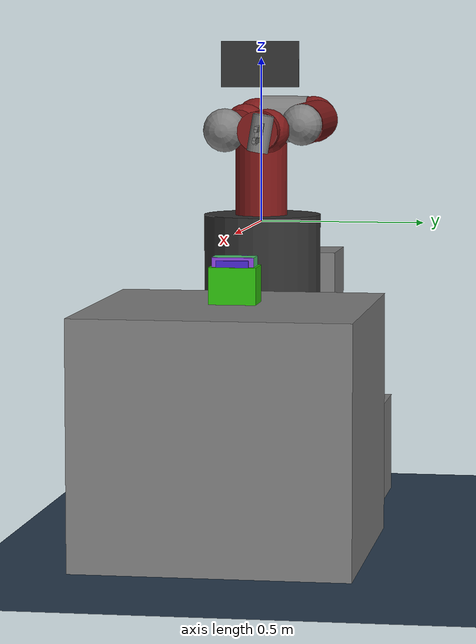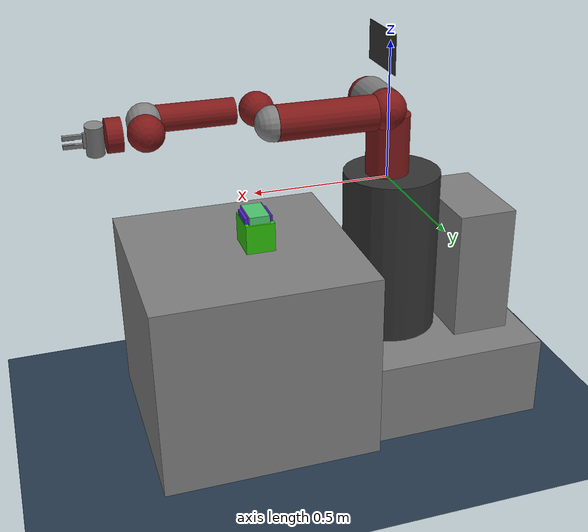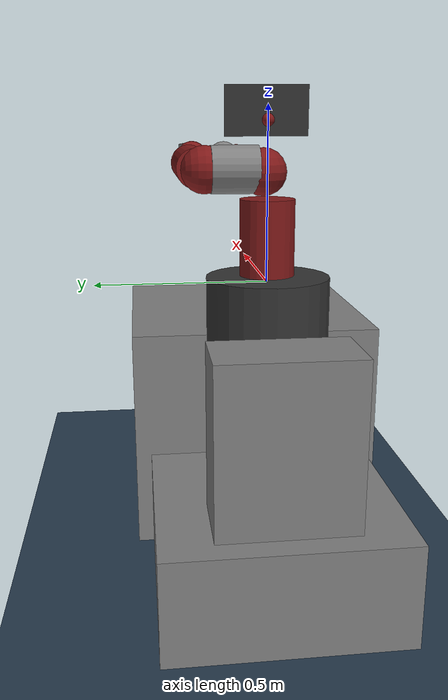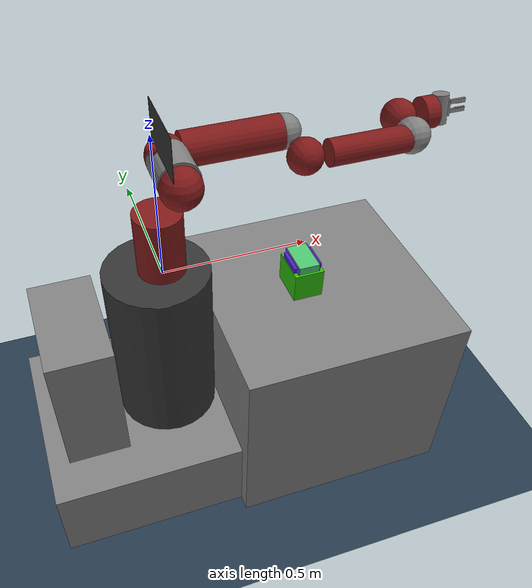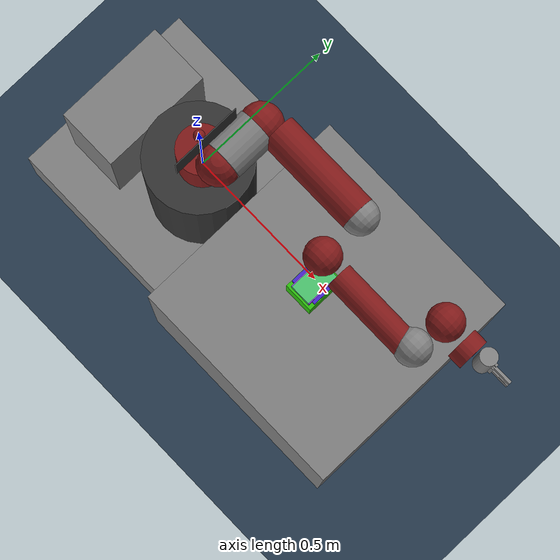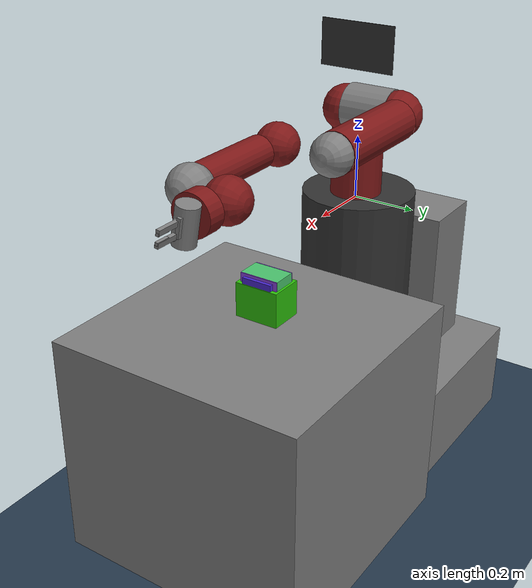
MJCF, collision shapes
<mujoco model="base">
	<compiler angle="radian" meshdir="meshes/" />
	<size nconmax="200" njmax="1000" />

	<asset>
	<texture builtin="gradient" height="256" rgb1=".9 .9 1." rgb2=".2 .3 .4" type="skybox" width="256" />
		<texture builtin="checker" height="512" name="texplane" rgb1=".2 .3 .4" rgb2=".1 0.15 0.2" type="2d" width="512" />
		<material name="floorplane" reflectance="0.5" texrepeat="1 1" texture="texplane" texuniform="true" />
	<mesh file="pedestal.stl" name="pedestal" />
		<mesh file="base.stl" name="base" />
		<mesh file="l0.stl" name="l0" />
		<mesh file="head.stl" name="head" />
		<mesh file="l1.stl" name="l1" />
		<mesh file="l2.stl" name="l2" />
		<mesh file="l3.stl" name="l3" />
		<mesh file="l4.stl" name="l4" />
		<mesh file="l5.stl" name="l5" />
		<mesh file="l6.stl" name="l6" />
	<mesh file="electric_gripper/electric_gripper_base.STL" name="electric_gripper_base" />
        <mesh file="electric_gripper/fingers/standard_narrow.STL" name="standard_narrow" />
        <mesh file="electric_gripper/fingers/half_round_tip.STL" name="half_round_tip" />
    </asset>

	<actuator>
	<velocity ctrllimited="true" ctrlrange="-1.0 1.0" joint="right_j0" kv="8.0" name="vel_right_j0" />
        <velocity ctrllimited="true" ctrlrange="-1.0 1.0" joint="right_j1" kv="7.0" name="vel_right_j1" />
        <velocity ctrllimited="true" ctrlrange="-1.0 1.0" joint="right_j2" kv="6.0" name="vel_right_j2" />
        <velocity ctrllimited="true" ctrlrange="-1.0 1.0" joint="right_j3" kv="4.0" name="vel_right_j3" />
        <velocity ctrllimited="true" ctrlrange="-1.0 1.0" joint="right_j4" kv="2.0" name="vel_right_j4" />
        <velocity ctrllimited="true" ctrlrange="-1.0 1.0" joint="right_j5" kv="0.5" name="vel_right_j5" />
        <velocity ctrllimited="true" ctrlrange="-1.0 1.0" joint="right_j6" kv="0.1" name="vel_right_j6" />
	<position ctrllimited="true" ctrlrange="0 0.020833" forcelimited="true" forcerange="-20 20" joint="r_gripper_r_finger_joint" kp="10000" name="r_gripper_r_finger_joint" />
        <position ctrllimited="true" ctrlrange="-0.020833 0" forcelimited="true" forcerange="-20 20" joint="r_gripper_l_finger_joint" kp="10000" name="r_gripper_l_finger_joint" />
    </actuator>

	<worldbody>
	<geom condim="3" material="floorplane" name="floor" pos="0 0 -0.913" size="3 3 .125" type="plane" />
		<body name="table" pos="0.56 0 -0.6">
			<geom pos="0 0 0" size="0.4 0.4 0.4" type="box" />
			<geom conaffinity="0" contype="0" group="1" name="table_visual" pos="0 0 0" size="0.399 0.399 0.399" type="box" />
			<site name="table_top" pos="0 0 0.4" rgba="0 0 0 0" size="0.001 0.001 0.001" />
		</body>
		<light diffuse=".8 .8 .8" dir="0 -.15 -1" directional="false" pos="1 1 4.0" specular="0.3 0.3 0.3" />
		<light diffuse=".8 .8 .8" dir="0 -.15 -1" directional="false" pos="-3. -3. 4.0" specular="0.3 0.3 0.3" />
		<camera mode="fixed" name="camera1" pos="2.5 0 1.8" quat="0.653 0.271 0.271 0.653" />
	<body name="base" pos="0 0 0">
			<inertial diaginertia="0 0 0" mass="0" pos="0 0 0" />
			<body name="controller_box" pos="0 0 0">
				<inertial diaginertia="1.71363 1.27988 0.809981" mass="46.64" pos="-0.325 0 -0.38" />
				<geom pos="-0.325 0 -0.38" size="0.11 0.2 0.265" type="box" />
			</body>
			<body name="pedestal_feet" pos="0 0 0">
				<inertial diaginertia="8.16095 9.59375 15.0785" mass="167.09" pos="-0.1225 0 -0.758" />
				<geom pos="-0.1225 0 -0.758" size="0.385 0.35 0.155" type="box" />
			</body>
			<body name="torso" pos="0 0 0">
				<inertial diaginertia="1e-08 1e-08 1e-08" mass="0.0001" pos="0 0 0" />
				<geom conaffinity="0" contype="0" group="1" rgba="0.2 0.2 0.2 1" size="0.05 0.05 0.05" type="box" />
			</body>
			<body name="pedestal" pos="0 0 0">
				<inertial diaginertia="6.0869 5.81635 4.20915" mass="60.864" pos="0 0 0" quat="0.659267 -0.259505 -0.260945 0.655692" />
				<geom conaffinity="0" contype="0" group="1" mesh="pedestal" pos="0.26 0.345 -0.91488" quat="0.5 0.5 -0.5 -0.5" rgba="0.2 0.2 0.2 1" type="mesh" />
				<geom pos="-0.02 0 -0.29" rgba="0.2 0.2 0.2 1" size="0.18 0.31" type="cylinder" />
			</body>
			<body name="right_arm_base_link" pos="0 0 0">
				<inertial diaginertia="0.00740351 0.00681776 0.00672942" mass="2.0687" pos="-0.0006241 -2.8025e-05 0.065404" quat="-0.209285 0.674441 0.227335 0.670558" />
				<geom conaffinity="0" contype="0" group="1" mesh="base" rgba="0.5 0.1 0.1 1" type="mesh" />
				<geom pos="0 0 0.12" rgba="0.5 0.1 0.1 1" size="0.08 0.12" type="cylinder" />
				<body name="right_l0" pos="0 0 0.08">
					<inertial diaginertia="0.0651588 0.0510944 0.0186218" mass="5.3213" pos="0.024366 0.010969 0.14363" quat="0.894823 0.00899958 -0.170275 0.412573" />
					<joint axis="0 0 1" limited="true" name="right_j0" pos="0 0 0" range="-3.0503 3.0503" />
					<geom conaffinity="0" contype="0" group="1" mesh="l0" rgba="0.5 0.1 0.1 1" type="mesh" />
					<geom pos="0.08 0 0.23" rgba="0.5 0.1 0.1 1" size="0.07" />
					<body name="head" pos="0 0 0.2965">
						<inertial diaginertia="0.0118334 0.00827089 0.00496574" mass="1.5795" pos="0.0053207 -2.6549e-05 0.1021" quat="0.999993 7.08405e-05 -0.00359857 -0.000626247" />
						<joint axis="0 0 1" limited="true" name="head_pan" pos="0 0 0" range="-5.0952 0.9064" />
						<geom conaffinity="0" contype="0" group="1" mesh="head" rgba="0.5 0.1 0.1 1" type="mesh" />
						<geom pos="0 0 0.08" rgba="0.5 0.1 0.1 1" size="0.018" />
						<body name="screen" pos="0.03 0 0.105" quat="0.5 0.5 0.5 0.5">
							<inertial diaginertia="1e-08 1e-08 1e-08" mass="0.0001" pos="0 0 0" />
							<geom conaffinity="0" contype="0" group="1" rgba="0.2 0.2 0.2 1" size="0.12 0.07 0.001" type="box" />
							<geom rgba="0.2 0.2 0.2 1" size="0.001" />
						</body>
						<body name="head_camera" pos="0.0228027 0 0.216572" quat="0.342813 -0.618449 0.618449 -0.342813">
							<inertial diaginertia="0 0 0" mass="0" pos="0.0228027 0 0.216572" quat="0.342813 -0.618449 0.618449 -0.342813" />
						</body>
					</body>
					<body name="right_torso_itb" pos="-0.055 0 0.22" quat="0.707107 0 -0.707107 0">
						<inertial diaginertia="1e-08 1e-08 1e-08" mass="0.0001" pos="0 0 0" />
					</body>
					<body name="right_l1" pos="0.081 0.05 0.237" quat="0.5 -0.5 0.5 0.5">
						<inertial diaginertia="0.0224339 0.0221624 0.0097097" mass="4.505" pos="-0.0030849 -0.026811 0.092521" quat="0.424888 0.891987 0.132364 -0.0794296" />
						<joint axis="0 0 1" limited="true" name="right_j1" pos="0 0 0" range="-3.8095 2.2736" />
						<geom conaffinity="0" contype="0" group="1" mesh="l1" rgba="0.5 0.1 0.1 1" type="mesh" />
						<geom pos="0 0 0.1225" rgba="0.5 0.1 0.1 1" size="0.07" />
						<body name="right_l2" pos="0 -0.14 0.1425" quat="0.707107 0.707107 0 0">
							<inertial diaginertia="0.0257928 0.025506 0.00292515" mass="1.745" pos="-0.00016044 -0.014967 0.13582" quat="0.707831 -0.0524761 0.0516007 0.702537" />
							<joint axis="0 0 1" limited="true" name="right_j2" pos="0 0 0" range="-3.0426 3.0426" />
							<geom conaffinity="0" contype="0" group="1" mesh="l2" rgba="0.5 0.1 0.1 1" type="mesh" />
							<geom pos="0 0 0.08" rgba="0.5 0.1 0.1 1" size="0.06 0.17" type="cylinder" />
							<body name="right_l3" pos="0 -0.042 0.26" quat="0.707107 -0.707107 0 0">
								<inertial diaginertia="0.0102404 0.0096997 0.00369622" mass="2.5097" pos="-0.0048135 -0.0281 -0.084154" quat="0.902999 0.385391 -0.0880901 0.168247" />
								<joint axis="0 0 1" limited="true" name="right_j3" pos="0 0 0" range="-3.0439 3.0439" />
								<geom conaffinity="0" contype="0" group="1" mesh="l3" rgba="0.5 0.1 0.1 1" type="mesh" />
								<geom pos="0 -0.01 -0.12" rgba="0.5 0.1 0.1 1" size="0.06" />
								<body name="right_l4" pos="0 -0.125 -0.1265" quat="0.707107 0.707107 0 0">
									<inertial diaginertia="0.0136549 0.0135493 0.00127353" mass="1.1136" pos="-0.0018844 0.0069001 0.1341" quat="0.803612 0.031257 -0.0298334 0.593582" />
									<joint axis="0 0 1" limited="true" name="right_j4" pos="0 0 0" range="-2.9761 2.9761" />
									<geom conaffinity="0" contype="0" group="1" mesh="l4" rgba="0.5 0.1 0.1 1" type="mesh" />
									<geom pos="0 0 0.11" rgba="0.5 0.1 0.1 1" size="0.045 0.15" type="cylinder" />
									<body name="right_arm_itb" pos="-0.055 0 0.075" quat="0.707107 0 -0.707107 0">
										<inertial diaginertia="1e-08 1e-08 1e-08" mass="0.0001" pos="0 0 0" />
									</body>
									<body name="right_l5" pos="0 0.031 0.275" quat="0.707107 -0.707107 0 0">
										<inertial diaginertia="0.00474131 0.00422857 0.00190672" mass="1.5625" pos="0.0061133 -0.023697 0.076416" quat="0.404076 0.9135 0.0473125 0.00158335" />
										<joint axis="0 0 1" damping="0.2" limited="true" name="right_j5" pos="0 0 0" range="-2.9761 2.9761" />
										<geom conaffinity="0" contype="0" group="1" mesh="l5" rgba="0.5 0.1 0.1 1" type="mesh" />
										<geom pos="0 0 0.1" rgba="0.5 0.1 0.1 1" size="0.06" />
										<body name="right_hand_camera" pos="0.039552 -0.033 0.0695" quat="0.707107 0 0.707107 0">
											<inertial diaginertia="0 0 0" mass="0" pos="0.039552 -0.033 0.0695" quat="0.707107 0 0.707107 0" />
										</body>
										<body name="right_wrist" pos="0 0 0.10541" quat="0.707107 0.707107 0 0">
											<inertial diaginertia="0 0 0" mass="0" pos="0 0 0.10541" quat="0.707107 0.707107 0 0" />
										</body>
										<body name="right_l6" pos="0 -0.11 0.1053" quat="0.0616248 0.06163 -0.704416 0.704416">
											<inertial diaginertia="0.000360258 0.000311068 0.000214974" mass="0.3292" pos="-8.0726e-06 0.0085838 -0.0049566" quat="0.479044 0.515636 -0.513069 0.491322" />
											<joint axis="0 0 1" damping="0.1" limited="true" name="right_j6" pos="0 0 0" range="-4.7124 4.7124" />
											<geom conaffinity="0" contype="0" group="1" mesh="l6" rgba="0.5 0.1 0.1 1" type="mesh" />
											<geom pos="0 0.015 -0.01" rgba="0.5 0.1 0.1 1" size="0.055 0.025" type="cylinder" />
											<body name="right_hand" pos="0 0 0.0245" quat="0.707105 0 0 0.707108">

                                        	<inertial diaginertia="1e-08 1e-08 1e-08" mass="1e-08" pos="1e-08 1e-08 1e-08" quat="0.820473 0.339851 -0.17592 0.424708" />
        <geom size="1e-08 5e-09" type="cylinder" />
        <body name="right_gripper_base" pos="0 0 0.025">
            <inertial diaginertia="3e-08 2e-08 2e-08" mass="0.3" pos="0 0 0" quat="-0.5 0.5 0.5 0.5" />
            <geom conaffinity="0" contype="0" group="1" mesh="electric_gripper_base" quat="0 0 0.707107 0.707107" type="mesh" />
            <geom quat="0 0 0.707107 0.707107" size="0.029 0.05" type="cylinder" />
            <body name="right_gripper" pos="0 0 0.095">
                <inertial diaginertia="0 0 0" mass="0.0001" pos="0 0 0" />
            </body>
            <body name="r_gripper_l_finger" pos="0 -0.0015 0.02">
                <inertial diaginertia="0.01 0.01 0.01" mass="0.02" pos="0 0 0" quat="0 0 0 -1" />
                <joint axis="0 1 0" damping="0.7" limited="true" name="r_gripper_l_finger_joint" pos="0 0 0" range="0 0.020833" type="slide" />
                <geom conaffinity="0" contype="0" group="1" mesh="standard_narrow" quat="0 0 0 -1" type="mesh" />
                <geom pos="0 0.01725 0.04" quat="0 0 0 -1" size="0.005 0.00675 0.0375" type="box" />
                <geom pos="-0.005 -0.003 0.0083" quat="0 0 0 -1" size="0.005 0.025 0.0085" type="box" />
                <body name="r_gripper_l_finger_tip" pos="0 0.01725 0.075">
                    <inertial diaginertia="0.01 0.01 0.01" mass="0.01" pos="0 0 0" quat="0 0 0 1" />
                    <geom conaffinity="0" contype="0" group="1" mesh="half_round_tip" quat="0 0 0 1" type="mesh" />
                    <geom pos="0 -0.0045 -0.015" quat="0 0 0 1" size="0.004 0.004 0.0185" type="box" />
                </body>
            </body>
            <body name="r_gripper_r_finger" pos="0 0.0015 0.02">
                <inertial diaginertia="0.01 0.01 0.01" mass="0.02" pos="0 0 0" />
                <joint axis="0 1 0" damping="0.7" limited="true" name="r_gripper_r_finger_joint" pos="0 0 0" range="-0.020833 0" type="slide" />
                <geom conaffinity="0" contype="0" group="1" mesh="standard_narrow" type="mesh" />
                <geom pos="0 -0.01725 0.04" size="0.005 0.00675 0.0375" type="box" />
                <geom pos="0.005 0.003 0.0083" size="0.005 0.025 0.0085" type="box" />
                <body name="r_gripper_r_finger_tip" pos="0 -0.01725 0.075">
                    <inertial diaginertia="0.01 0.01 0.01" mass="0.01" pos="0 0 0" />
                    <geom conaffinity="0" contype="0" group="1" mesh="half_round_tip" type="mesh" />
                    <geom pos="0 0.0045 -0.015" size="0.004 0.004 0.0185" type="box" />
                </body>
            </body>
        </body>
    </body>
										</body>
									</body>
									<body name="right_l4_2" pos="0 0 0">
										<inertial diaginertia="1e-08 1e-08 1e-08" mass="1e-08" pos="1e-08 1e-08 1e-08" quat="0.820473 0.339851 -0.17592 0.424708" />
										<geom pos="0 0.01 0.26" size="0.06" />
									</body>
								</body>
							</body>
							<body name="right_l2_2" pos="0 0 0">
								<inertial diaginertia="1e-08 1e-08 1e-08" mass="1e-08" pos="1e-08 1e-08 1e-08" quat="0.820473 0.339851 -0.17592 0.424708" />
								<geom pos="0 0 0.26" size="0.06" />
							</body>
						</body>
						<body name="right_l1_2" pos="0 0 0">
							<inertial diaginertia="1e-08 1e-08 1e-08" mass="1e-08" pos="1e-08 1e-08 1e-08" quat="0.820473 0.339851 -0.17592 0.424708" />
							<geom pos="0 0 0.035" size="0.07 0.07" type="cylinder" />
						</body>
					</body>
				</body>
			</body>
		</body>
	<body name="stacker_object_0" pos="0.5 0.0 -0.13203572093326582"><geom pos="0 0 0" rgba="0.5491871723413043 0.2655855581713016 0.8779129076195188 1.0" size="0.039816549608600545 0.06128255041996871 0.06796427906673418" type="box" /><body><geom conaffinity="0" contype="0" group="0" rgba="0.5491871723413043 0.2655855581713016 0.8779129076195188 1.0" size="0.03941838411251454 0.060669724915769024 0.06728463627606683" type="box" /><geom conaffinity="0" contype="0" group="1" rgba="0.5491871723413043 0.2655855581713016 0.8779129076195188 1.0" size="0.03941838411251454 0.060669724915769024 0.06728463627606683" type="box" /></body><joint name="stacker_object_free_joint_0" type="free" /></body><body name="stacker_target_0" pos="0.5 0.0 -0.13203572093326582"><geom conaffinity="0" contype="0" group="0" rgba="0.5491871723413043 0.2655855581713016 0.8779129076195188 0.2" size="0.03941838411251454 0.060669724915769024 0.06728463627606683" type="box" /><geom conaffinity="0" contype="0" group="1" rgba="0.5491871723413043 0.2655855581713016 0.8779129076195188 0.2" size="0.03941838411251454 0.060669724915769024 0.06728463627606683" type="box" /></body><body name="stacker_object_1" pos="0.5 0.0 -0.13628158925566036"><geom pos="0 0 0" rgba="0.2860135037995416 0.1506478270802587 0.8130511228806291 1.0" size="0.05073176189627246 0.04757783762630233 0.06371841074433965" type="box" /><body><geom conaffinity="0" contype="0" group="0" rgba="0.2860135037995416 0.1506478270802587 0.8130511228806291 1.0" size="0.05022444427730973 0.0471020592500393 0.06308122663689625" type="box" /><geom conaffinity="0" contype="0" group="1" rgba="0.2860135037995416 0.1506478270802587 0.8130511228806291 1.0" size="0.05022444427730973 0.0471020592500393 0.06308122663689625" type="box" /></body><joint name="stacker_object_free_joint_1" type="free" /></body><body name="stacker_target_1" pos="0.5 0.0 -0.13628158925566036"><geom conaffinity="0" contype="0" group="0" rgba="0.2860135037995416 0.1506478270802587 0.8130511228806291 0.2" size="0.05022444427730973 0.0471020592500393 0.06308122663689625" type="box" /><geom conaffinity="0" contype="0" group="1" rgba="0.2860135037995416 0.1506478270802587 0.8130511228806291 0.2" size="0.05022444427730973 0.0471020592500393 0.06308122663689625" type="box" /></body><body name="stacker_object_2" pos="0.5 0.0 -0.14614353252282378"><geom pos="0 0 0" rgba="0.1804307489349507 0.7584281719860411 0.047992479200348326 1.0" size="0.05330905281456452 0.06921054866418103 0.05385646747717624" type="box" /><body><geom conaffinity="0" contype="0" group="0" rgba="0.1804307489349507 0.7584281719860411 0.047992479200348326 1.0" size="0.05277596228641888 0.06851844317753922 0.05331790280240448" type="box" /><geom conaffinity="0" contype="0" group="1" rgba="0.1804307489349507 0.7584281719860411 0.047992479200348326 1.0" size="0.05277596228641888 0.06851844317753922 0.05331790280240448" type="box" /></body><joint name="stacker_object_free_joint_2" type="free" /></body><body name="stacker_target_2" pos="0.5 0.0 -0.14614353252282378"><geom conaffinity="0" contype="0" group="0" rgba="0.1804307489349507 0.7584281719860411 0.047992479200348326 0.2" size="0.05277596228641888 0.06851844317753922 0.05331790280240448" type="box" /><geom conaffinity="0" contype="0" group="1" rgba="0.1804307489349507 0.7584281719860411 0.047992479200348326 0.2" size="0.05277596228641888 0.06851844317753922 0.05331790280240448" type="box" /></body><body name="stacker_object_3" pos="0.5 0.0 -0.13582758065633646"><geom pos="0 0 0" rgba="0.5571946337025796 0.5416191172670946 0.8139009865491612 1.0" size="0.03278571135299269 0.04589166693027627 0.06417241934366355" type="box" /><body><geom conaffinity="0" contype="0" group="0" rgba="0.5571946337025796 0.5416191172670946 0.8139009865491612 1.0" size="0.03245785423946276 0.04543275026097351 0.06353069515022691" type="box" /><geom conaffinity="0" contype="0" group="1" rgba="0.5571946337025796 0.5416191172670946 0.8139009865491612 1.0" size="0.03245785423946276 0.04543275026097351 0.06353069515022691" type="box" /></body><joint name="stacker_object_free_joint_3" type="free" /></body><body name="stacker_target_3" pos="0.5 0.0 -0.13582758065633646"><geom conaffinity="0" contype="0" group="0" rgba="0.5571946337025796 0.5416191172670946 0.8139009865491612 0.2" size="0.03245785423946276 0.04543275026097351 0.06353069515022691" type="box" /><geom conaffinity="0" contype="0" group="1" rgba="0.5571946337025796 0.5416191172670946 0.8139009865491612 0.2" size="0.03245785423946276 0.04543275026097351 0.06353069515022691" type="box" /></body><body name="stacker_object_4" pos="0.5 0.0 -0.132008683289754"><geom pos="0 0 0" rgba="0.2983512085534791 0.7764213884542882 0.436811522223682 1.0" size="0.03659575727831763 0.06163610747006918 0.06799131671024602" type="box" /><body><geom conaffinity="0" contype="0" group="0" rgba="0.2983512085534791 0.7764213884542882 0.436811522223682 1.0" size="0.03622979970553446 0.06101974639536849 0.06731140354314356" type="box" /><geom conaffinity="0" contype="0" group="1" rgba="0.2983512085534791 0.7764213884542882 0.436811522223682 1.0" size="0.03622979970553446 0.06101974639536849 0.06731140354314356" type="box" /></body><joint name="stacker_object_free_joint_4" type="free" /></body><body name="stacker_target_4" pos="0.5 0.0 -0.132008683289754"><geom conaffinity="0" contype="0" group="0" rgba="0.2983512085534791 0.7764213884542882 0.436811522223682 0.2" size="0.03622979970553446 0.06101974639536849 0.06731140354314356" type="box" /><geom conaffinity="0" contype="0" group="1" rgba="0.2983512085534791 0.7764213884542882 0.436811522223682 0.2" size="0.03622979970553446 0.06101974639536849 0.06731140354314356" type="box" /></body><body name="stacker_object_5" pos="0.5 0.0 -0.14785887029627418"><geom pos="0 0 0" rgba="0.5019428353582095 0.9879982879349842 0.8005561648641035 1.0" size="0.03548164707042673 0.030405357742719533 0.052141129703725836" type="box" /><body><geom conaffinity="0" contype="0" group="0" rgba="0.5019428353582095 0.9879982879349842 0.8005561648641035 1.0" size="0.035126830599722464 0.030101304165292338 0.051619718406688574" type="box" /><geom conaffinity="0" contype="0" group="1" rgba="0.5019428353582095 0.9879982879349842 0.8005561648641035 1.0" size="0.035126830599722464 0.030101304165292338 0.051619718406688574" type="box" /></body><joint name="stacker_object_free_joint_5" type="free" /></body><body name="stacker_target_5" pos="0.5 0.0 -0.14785887029627418"><geom conaffinity="0" contype="0" group="0" rgba="0.5019428353582095 0.9879982879349842 0.8005561648641035 0.2" size="0.035126830599722464 0.030101304165292338 0.051619718406688574" type="box" /><geom conaffinity="0" contype="0" group="1" rgba="0.5019428353582095 0.9879982879349842 0.8005561648641035 0.2" size="0.035126830599722464 0.030101304165292338 0.051619718406688574" type="box" /></body></worldbody>
</mujoco>
